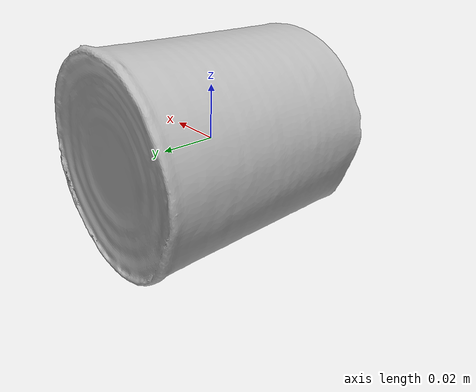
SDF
<?xml version='1.0'?>
<sdf version="1.4">
  <model name="SauerkrautSmall">
    <static>false</static>
    <link name="link">
      <inertial>
        <pose>-3.266970957095886e-05 0.0031385639820823248 0.0003862165114058325 1.560625510346934 -0.583040675863636 0.014316698862195163</pose>
        <mass>0.03498248549299291</mass>
        <inertia>
          <ixx>3.111860246197619e-05</ixx>
          <ixy>5.331062389964729e-21</ixy>
          <ixz>5.117897478073422e-21</ixz>
          <iyy>3.104204416300293e-05</iyy>
          <iyz>6.815690758258008e-21</iyz>
          <izz>2.4048041117526045e-05</izz>
        </inertia>
      </inertial>
      <collision name="collision">
        <geometry>
          <mesh>
            <!-- Use a downsampled mesh for collisions -->
            <uri>model:///SauerkrautSmall/SauerkrautSmall_250_collision.obj</uri>
	        </mesh>
        </geometry>
        <surface>
      </surface>
      </collision>
      <visual name="visual">
        <geometry>
          <mesh>
            <uri>model:///SauerkrautSmall/SauerkrautSmall_25k_tex.obj</uri>
	        </mesh>
        </geometry>
        <material>
          <script>
            <uri>model:///SauerkrautSmall/SauerkrautSmall.material</uri>
            <name>SauerkrautSmall</name>
          </script>
        </material>
      </visual>
    </link>
  </model>
</sdf>
